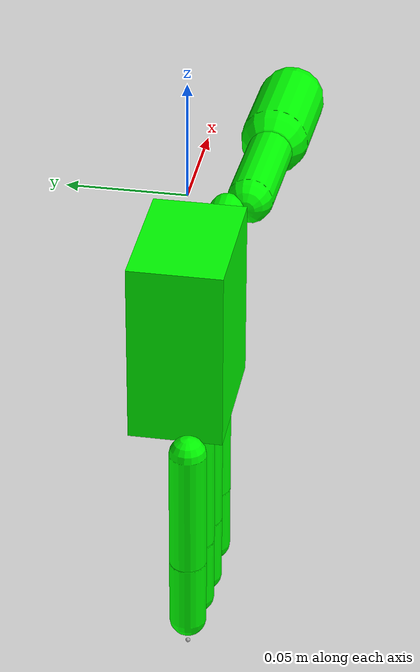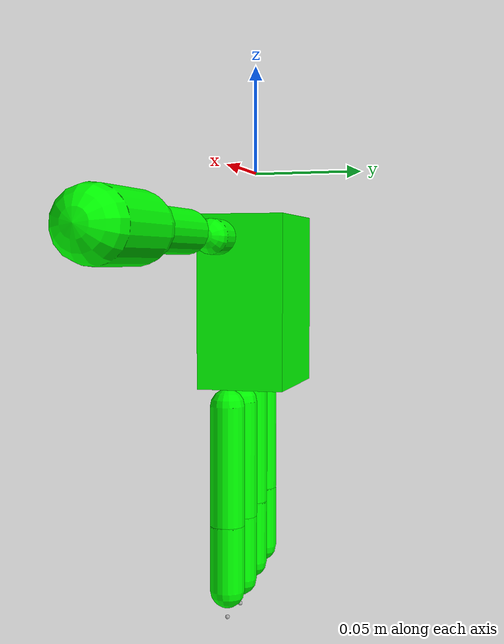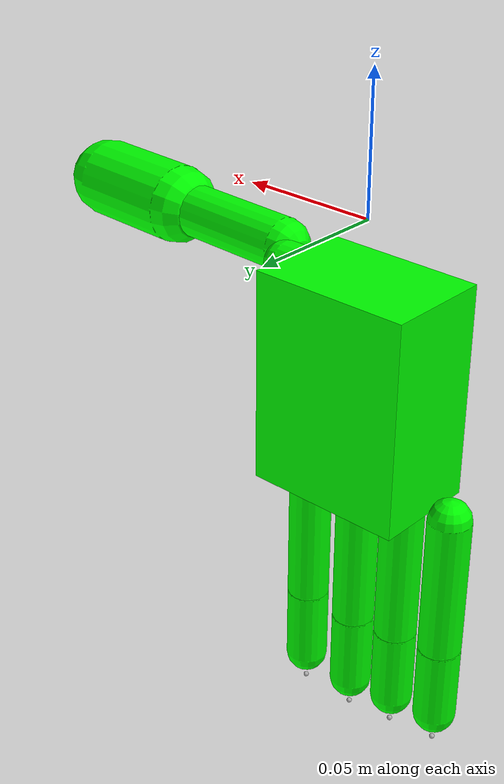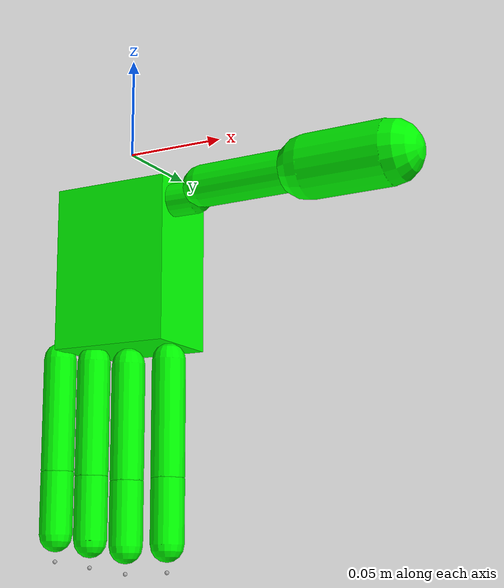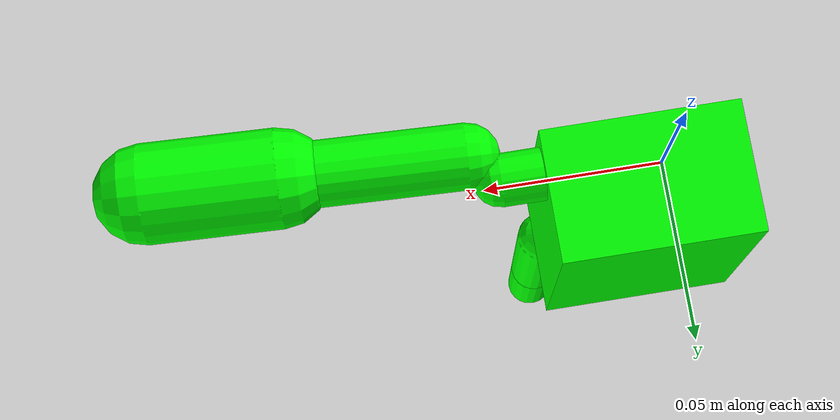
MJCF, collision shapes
<mujoco model="xhand_left">
  <compiler angle="radian" meshdir="assets/" />

  <default>
    <!-- disable all contacts and use explicit collision pairs -->
    <geom density="800" condim="1" contype="0" conaffinity="0" />
    <!-- with this setting, the response time is around 1s -->
    <position kp="300" dampratio="1.0" inheritrange="1" />
    <joint damping="0.0" armature="1.0" frictionloss="0.0" />
    <site size="0.01" type="sphere" rgba="1 0 0 1" group="3" />
  </default>

  <asset>
    <texture type="skybox" builtin="gradient" rgb1="0.3 0.5 0.7" rgb2="0 0 0" width="512"
      height="3072" />
    <texture type="2d" name="left_groundplane" builtin="checker" mark="edge" rgb1="0.2 0.3 0.4"
      rgb2="0.1 0.2 0.3"
      markrgb="0.8 0.8 0.8" width="300" height="300" />
    <material name="left_groundplane" texture="left_groundplane" texuniform="true"
      texrepeat="5 5"
      reflectance="0.2" />
    <mesh name="left_hand_link" content_type="model/stl" file="left_hand_link.STL" />
    <mesh name="left_hand_thumb_bend_link" content_type="model/stl"
      file="left_hand_thumb_bend_link.STL" />
    <mesh name="left_hand_thumb_rota_link1" content_type="model/stl"
      file="left_hand_thumb_rota_link1.STL" />
    <mesh name="left_hand_thumb_rota_link2" content_type="model/stl"
      file="left_hand_thumb_rota_link2.STL" />
    <mesh name="left_hand_index_bend_link" content_type="model/stl"
      file="left_hand_index_bend_link.STL" />
    <mesh name="left_hand_index_rota_link1" content_type="model/stl"
      file="left_hand_index_rota_link1.STL" />
    <mesh name="left_hand_index_rota_link2" content_type="model/stl"
      file="left_hand_index_rota_link2.STL" />
    <mesh name="left_hand_mid_link1" content_type="model/stl" file="left_hand_mid_link1.STL" />
    <mesh name="left_hand_mid_link2" content_type="model/stl" file="left_hand_mid_link2.STL" />
    <mesh name="left_hand_ring_link1" content_type="model/stl" file="left_hand_ring_link1.STL" />
    <mesh name="left_hand_ring_link2" content_type="model/stl" file="left_hand_ring_link2.STL" />
    <mesh name="left_hand_pinky_link1" content_type="model/stl" file="left_hand_pinky_link1.STL" />
    <mesh name="left_hand_pinky_link2" content_type="model/stl" file="left_hand_pinky_link2.STL" />
  </asset>

  <worldbody>
    <body name="L_forearm_ty_link">
      <camera name="left_track" pos="0.868 -0.348 -0.175"
        xyaxes="0.037 0.999 -0.000 0.011 -0.000 1.000" />
      <inertial pos="0 0 0" mass="0.1" diaginertia="0.01 0.01 0.01" />
      <joint name="L_forearm_tx_link_joint" pos="0 0 0" axis="1 0 0" type="slide" range="-5 5"
      />
      <body name="L_forearm_tz_link">
        <inertial pos="0 0 0" mass="0.1" diaginertia="0.01 0.01 0.01" />
        <joint name="L_forearm_ty_link_joint" pos="0 0 0" axis="0 1 0" type="slide" range="-5 5"
        />
        <body name="L_forearm_roll_link">
          <inertial pos="0 0 0" mass="0.1" diaginertia="0.01 0.01 0.01" />
          <joint name="L_forearm_tz_link_joint" pos="0 0 0" axis="0 0 1" type="slide" range="-5 5"
          />
          <body name="L_forearm_pitch_link">
            <inertial pos="0 0 0" mass="0.1" diaginertia="0.01 0.01 0.01" />
            <joint name="L_forearm_roll_link_joint" pos="0 0 0" axis="0 0 1" range="-6.2 6.2"
            />
            <body name="L_forearm_yaw_link">
              <inertial pos="0 0 0" mass="0.1" diaginertia="0.01 0.01 0.01" />
              <joint name="L_forearm_pitch_link_joint" pos="0 0 0" axis="1 0 0" range="-6.2 6.2"
              />
              <body name="left_hand_link">
                <inertial pos="-0.00718397 -0.00342396 -0.0584832"
                  quat="0.712643 0.0910084 0.100904 0.688241" mass="0.529961"
                  diaginertia="0.000678163 0.000491768 0.000335587" />
                <joint name="L_forearm_yaw_link_joint" pos="0 0 0" axis="0 -1 0" range="-6.2 6.2"
                />
                <geom name="left_hand_link_visual" type="mesh" contype="0" conaffinity="0" group="1"
                  density="0" rgba="0.866667 0.866667 0.890196 1" mesh="left_hand_link" />
                <geom name="collision_hand_left_palm_0" type="box" size="0.03 0.02 0.04"
                  pos="0 0 -0.06"
                  rgba="0 1 0 1" group="3" />
                <site name="left_palm" pos="0 0 0" type="box" size="0.01 0.02 0.03" quat="0 1 -1 0" />
                <body name="left_hand_thumb_bend_link" pos="0.0228 -0.0095 -0.0305">
                  <inertial pos="0.0145291 0.000901344 -0.000127912"
                    quat="-0.028902 0.68936 -0.0167067 0.72365" mass="0.00985534"
                    diaginertia="1.30648e-06 1.29142e-06 5.40957e-07" />
                  <joint name="left_hand_thumb_bend_joint" pos="0 0 0" axis="0 0 -1" range="0 1.83"
                  />
                  <geom name="left_thumb_bend_visual" type="mesh" contype="0" conaffinity="0"
                    group="1" density="0" rgba="0.890196 0.890196 0.913725 1"
                    mesh="left_hand_thumb_bend_link" />
                  <geom name="collision_hand_left_thumb_2" type="capsule" size="0.008"
                    fromto="0 0 0 0.02 0 0"
                    rgba="0 1 0 1" group="3" />
                  <body name="left_hand_thumb_rota_link1" pos="0.028599 -0.0083177 0.00178"
                    quat="0.99124 -0.130499 0.00265603 -0.0201745">
                    <inertial pos="0.0279279 0.000121046 -0.000277543"
                      quat="0.0994744 0.703642 -0.0845458 0.698459" mass="0.153197"
                      diaginertia="5.62164e-05 4.89587e-05 2.23807e-05" />
                    <joint name="left_hand_thumb_rota_joint1" pos="0 0 0" axis="0 1 0"
                      range="-1.05 1.57" />
                    <geom name="left_thumb_rota1_visual" type="mesh" contype="0" conaffinity="0"
                      group="1" density="0" rgba="1 1 1 1" mesh="left_hand_thumb_rota_link1" />
                    <geom name="collision_hand_left_thumb_1" type="capsule" size="0.01"
                      fromto="0 0 0 0.055 0 0" rgba="0 1 0 1"
                      group="3" />
                    <body name="left_hand_thumb_rota_link2" pos="0.0553 0 0">
                      <inertial pos="0.0224529 0.000690615 0.00314279"
                        quat="0.0604386 0.713745 -0.0199603 0.697508" mass="0.037401"
                        diaginertia="9.54692e-06 8.2705e-06 3.92141e-06" />
                      <joint name="left_hand_thumb_rota_joint2" pos="0 0 0" axis="0 1 0"
                        range="-0.17 1.83" />
                      <geom name="left_thumb_rota2_visual" type="mesh" contype="0" conaffinity="0"
                        group="1" density="0" rgba="0.384314 0.384314 0.384314 1"
                        mesh="left_hand_thumb_rota_link2" />
                      <geom name="collision_hand_left_thumb_0" type="capsule" size="0.015"
                        fromto="0 0 0 0.04 0 0"
                        rgba="0 1 0 1"
                        group="3" />
                      <geom size="0.001" pos="0.0504017 0 0" contype="0" conaffinity="0" group="1"
                        density="0" rgba="0.698039 0.698039 0.698039 1" />
                      <site name="left_thumb_tip" pos="0.045 0 -0.015" />
                      <site name="track_hand_left_thumb_tip" pos="0.045 0 -0.015" />
                      <site name="trace_hand_left_thumb_tip" pos="0.045 0 -0.015" />
                    </body>
                  </body>
                </body>
                <body name="left_hand_index_bend_link" pos="0.0265 -0.0065 -0.0899">
                  <inertial pos="-0.000134545 -0.000675884 0.00420851"
                    quat="0.999797 0.0190041 0.00232573 0.00634399" mass="0.0677836"
                    diaginertia="2.16573e-05 2.09935e-05 3.36931e-06" />
                  <joint name="left_hand_index_bend_joint" pos="0 0 0" axis="0 1 0"
                    range="-0.175 0.175" />
                  <geom name="left_index_bend_visual" type="mesh" contype="0" conaffinity="0"
                    group="1" density="0" rgba="0.988235 0.737255 0.517647 1"
                    mesh="left_hand_index_bend_link" />

                  <body name="left_hand_index_rota_link1" pos="0 0 -0.0178">
                    <inertial pos="0.000139769 0.000800517 -0.0356039"
                      quat="0.999865 -0.00809181 0.0131314 0.00566203" mass="0.0630216"
                      diaginertia="2.05301e-05 1.92461e-05 4.135e-06" />
                    <joint name="left_hand_index_joint1" pos="0 0 0" axis="-1 0 0" range="0 1.92"
                    />
                    <geom name="left_index_rota1_visual" type="mesh" contype="0" conaffinity="0"
                      group="1" density="0" rgba="1 1 1 1" mesh="left_hand_index_rota_link1" />
                    <geom name="collision_hand_left_index_1" type="capsule" size="0.008"
                      fromto="0 0 0 0 0 -0.055" rgba="0 1 0 1" group="3" />
                    <body name="left_hand_index_rota_link2" pos="0 0 -0.0558">
                      <inertial pos="0.000338569 -1.93676e-05 -0.0231329"
                        quat="0.935384 -0.00588977 0.0260883 0.35262" mass="0.0179923"
                        diaginertia="3.02409e-06 3.01968e-06 9.82703e-07" />
                      <joint name="left_hand_index_joint2" pos="0 0 0" axis="-1 0 0" range="0 1.92"
                      />
                      <geom name="left_index_rota2_visual" type="mesh" contype="0" conaffinity="0"
                        group="1" density="0" rgba="0.866667 0.866667 0.890196 1"
                        mesh="left_hand_index_rota_link2" />
                      <geom name="collision_hand_left_index_0" type="capsule" size="0.008"
                        fromto="0 0 0 0 0 -0.03" rgba="0 1 0 1" group="3" />
                      <geom size="0.001" pos="0 0 -0.0425" contype="0" conaffinity="0" group="1"
                        density="0" rgba="0.698039 0.698039 0.698039 1" />
                      <site name="left_index_tip" pos="0 -0.005 -0.03" />
                      <site name="track_hand_left_index_tip" pos="0 -0.005 -0.03" />
                      <site name="trace_hand_left_index_tip" pos="0 -0.005 -0.03" />
                    </body>
                  </body>
                </body>
                <body name="left_hand_mid_link1" pos="0.004 -0.0065 -0.1082">
                  <inertial pos="0.00013977 0.000800517 -0.0356039"
                    quat="0.999865 -0.00809181 0.0131314 0.00566198" mass="0.0630216"
                    diaginertia="2.05301e-05 1.92461e-05 4.135e-06" />
                  <joint name="left_hand_mid_joint1" pos="0 0 0" axis="-1 0 0" range="0 1.92"
                  />
                  <geom name="left_middle_link1_visual" type="mesh" contype="0" conaffinity="0"
                    group="1" density="0" rgba="1 1 1 1" mesh="left_hand_mid_link1" />
                  <geom name="collision_hand_left_middle_1" type="capsule" size="0.008"
                    fromto="0 0 0 0 0 -0.055" rgba="0 1 0 1" group="3" />
                  <body name="left_hand_mid_link2" pos="0 0 -0.0558">
                    <inertial pos="0.000338572 -1.93625e-05 -0.0231328"
                      quat="0.935372 -0.00588866 0.0260883 0.352653" mass="0.0179923"
                      diaginertia="3.02409e-06 3.01968e-06 9.82702e-07" />
                    <joint name="left_hand_mid_joint2" pos="0 0 0" axis="-1 0 0" range="0 1.92"
                    />
                    <geom name="left_middle_link2_visual" type="mesh" contype="0" conaffinity="0"
                      group="1" density="0" rgba="0.866667 0.866667 0.890196 1"
                      mesh="left_hand_mid_link2" />
                    <geom name="collision_hand_left_middle_0" type="capsule" size="0.008"
                      fromto="0 0 0 0 0 -0.03" rgba="0 1 0 1" group="3" />
                    <geom size="0.001" pos="0 0 -0.0425" contype="0" conaffinity="0" group="1"
                      density="0" rgba="0.698039 0.698039 0.698039 1" />
                    <site name="left_middle_tip" pos="0 -0.005 -0.03" />
                    <site name="track_hand_left_middle_tip" pos="0 -0.005 -0.03" />
                    <site name="trace_hand_left_middle_tip" pos="0 -0.005 -0.03" />
                  </body>
                </body>
                <body name="left_hand_ring_link1" pos="-0.016 -0.0065 -0.1052">
                  <inertial pos="0.00013977 0.000800517 -0.0356039"
                    quat="0.999865 -0.00809184 0.0131314 0.00566198" mass="0.0630216"
                    diaginertia="2.05301e-05 1.92461e-05 4.13501e-06" />
                  <joint name="left_hand_ring_joint1" pos="0 0 0" axis="-1 0 0" range="0 1.92"
                  />
                  <geom name="left_ring_link1_visual" type="mesh" contype="0" conaffinity="0"
                    group="1" density="0" rgba="1 1 1 1" mesh="left_hand_ring_link1" />
                  <geom name="collision_hand_left_ring_1" type="capsule" size="0.008"
                    fromto="0 0 0 0 0 -0.055" rgba="0 1 0 1" group="3" />
                  <body name="left_hand_ring_link2" pos="0 0 -0.0558">
                    <inertial pos="0.000338569 -1.93676e-05 -0.0231329"
                      quat="0.935384 -0.00588977 0.0260883 0.35262" mass="0.0179923"
                      diaginertia="3.02409e-06 3.01968e-06 9.82703e-07" />
                    <joint name="left_hand_ring_joint2" pos="0 0 0" axis="-1 0 0" range="0 1.92"
                    />
                    <geom name="left_ring_link2_visual" type="mesh" contype="0" conaffinity="0"
                      group="1" density="0" rgba="0.866667 0.866667 0.890196 1"
                      mesh="left_hand_ring_link2" />
                    <geom name="collision_hand_left_ring_0" type="capsule" size="0.008"
                      fromto="0 0 0 0 0 -0.03" rgba="0 1 0 1" group="3" />
                    <geom size="0.001" pos="0 0 -0.0425" contype="0" conaffinity="0" group="1"
                      density="0" rgba="0.698039 0.698039 0.698039 1" />
                    <site name="left_ring_tip" pos="0 -0.005 -0.03" />
                    <site name="track_hand_left_ring_tip" pos="0 -0.005 -0.03" />
                    <site name="trace_hand_left_ring_tip" pos="0 -0.005 -0.03" />
                  </body>
                </body>
                <body name="left_hand_pinky_link1" pos="-0.036 -0.0065 -0.1022">
                  <inertial pos="0.000139769 0.000800517 -0.0356039"
                    quat="0.999865 -0.00809183 0.0131314 0.00566202" mass="0.0630216"
                    diaginertia="2.05301e-05 1.92461e-05 4.135e-06" />
                  <joint name="left_hand_pinky_joint1" pos="0 0 0" axis="-1 0 0" range="0 1.92"
                  />
                  <geom name="left_pinky_link1_visual" type="mesh" contype="0" conaffinity="0"
                    group="1" density="0" rgba="1 1 1 1" mesh="left_hand_pinky_link1" />
                  <geom name="collision_hand_left_pinky_1" type="capsule" size="0.008"
                    fromto="0 0 0 0 0 -0.055" rgba="0 1 0 1" group="3" />
                  <body name="left_hand_pinky_link2" pos="0 0 -0.0558">
                    <inertial pos="0.000338573 -1.93618e-05 -0.0231328"
                      quat="0.935377 -0.00588901 0.0260881 0.35264" mass="0.0179923"
                      diaginertia="3.02409e-06 3.01968e-06 9.82702e-07" />
                    <joint name="left_hand_pinky_joint2" pos="0 0 0" axis="-1 0 0" range="0 1.92"
                    />
                    <geom name="left_pinky_link2_visual" type="mesh" contype="0" conaffinity="0"
                      group="1" density="0" rgba="0.866667 0.866667 0.890196 1"
                      mesh="left_hand_pinky_link2" />
                    <geom name="collision_hand_left_pinky_0" type="capsule" size="0.008"
                      fromto="0 0 0 0 0 -0.03" rgba="0 1 0 1" group="3" />
                    <geom size="0.001" pos="0 0 -0.0425" contype="0" conaffinity="0" group="1"
                      density="0" rgba="0.698039 0.698039 0.698039 1" />
                    <site name="left_pinky_tip" pos="0 -0.005 -0.03" />
                    <site name="track_hand_left_pinky_tip" pos="0 -0.005 -0.03" />
                    <site name="trace_hand_left_pinky_tip" pos="0 -0.005 -0.03" />
                  </body>
                </body>
              </body>
            </body>
          </body>
        </body>
      </body>
    </body>
  </worldbody>

  <actuator>
    <!-- Global position and rotation joints -->
    <position name="L_forearm_tx_position" joint="L_forearm_tx_link_joint" kp="1000" />
    <position name="L_forearm_ty_position" joint="L_forearm_ty_link_joint" kp="1000" />
    <position name="L_forearm_tz_position" joint="L_forearm_tz_link_joint" kp="1000" />
    <position name="L_forearm_roll_position" joint="L_forearm_roll_link_joint" kp="1000" />
    <position name="L_forearm_pitch_position" joint="L_forearm_pitch_link_joint" kp="1000" />
    <position name="L_forearm_yaw_position" joint="L_forearm_yaw_link_joint" kp="1000" />

    <!-- Thumb joints -->
    <position name="left_thumb_bend_position" joint="left_hand_thumb_bend_joint" />
    <position name="left_thumb_rota1_position" joint="left_hand_thumb_rota_joint1" />
    <position name="left_thumb_rota2_position" joint="left_hand_thumb_rota_joint2" />

    <!-- Index joints -->
    <position name="left_index_bend_position" joint="left_hand_index_bend_joint" />
    <position name="left_index_joint1_position" joint="left_hand_index_joint1" />
    <position name="left_index_joint2_position" joint="left_hand_index_joint2" />

    <!-- Middle joints -->
    <position name="left_middle_joint1_position" joint="left_hand_mid_joint1" />
    <position name="left_middle_joint2_position" joint="left_hand_mid_joint2" />

    <!-- Ring joints -->
    <position name="left_ring_joint1_position" joint="left_hand_ring_joint1" />
    <position name="left_ring_joint2_position" joint="left_hand_ring_joint2" />

    <!-- Pinky joints -->
    <position name="left_pinky_joint1_position" joint="left_hand_pinky_joint1" />
    <position name="left_pinky_joint2_position" joint="left_hand_pinky_joint2" />
  </actuator>
</mujoco>
